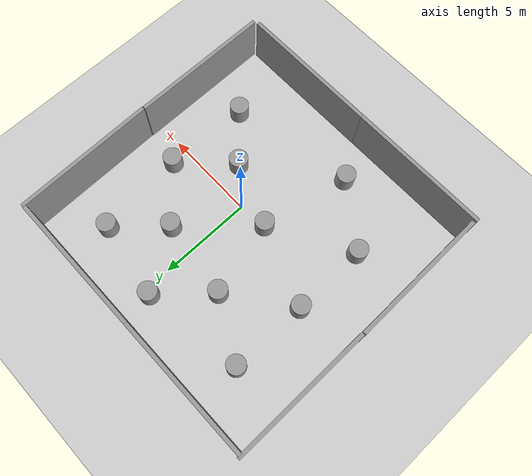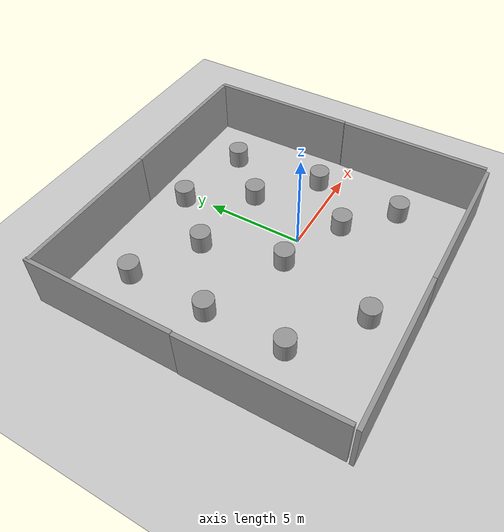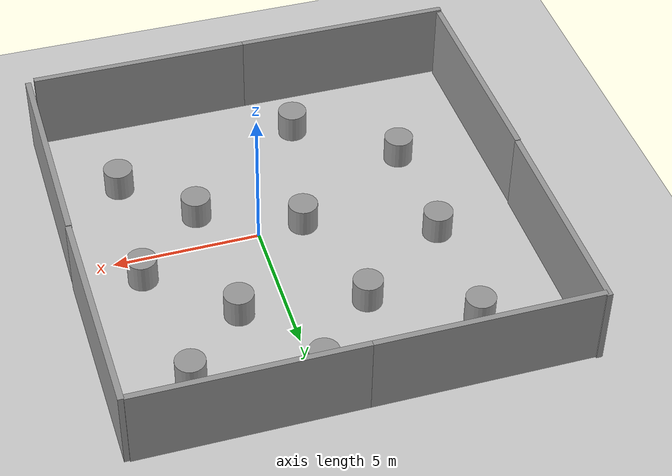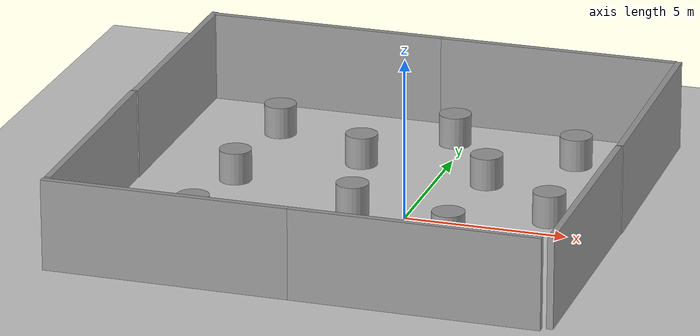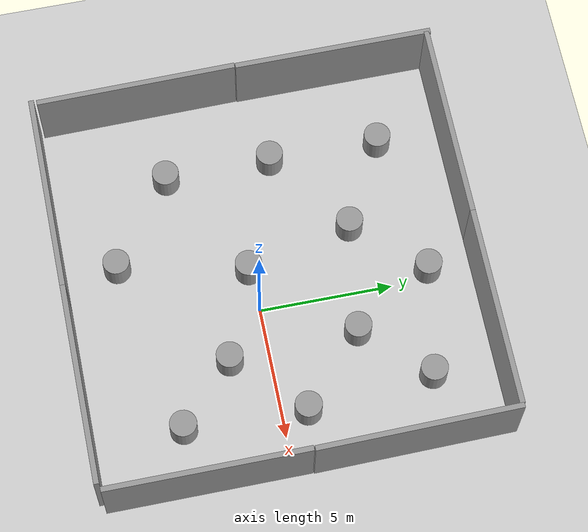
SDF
<sdf version="1.7">
 <world name="default">
  <light name="sun" type="directional">
   <pose>0 0 10 0 -0 0</pose>
   <diffuse>0.8 0.8 0.8 1</diffuse>
   <specular>0.2 0.2 0.2 1</specular>
   <attenuation>
    <range>1000</range>
    <constant>0.9</constant>
    <linear>0.01</linear>
    <quadratic>0.001</quadratic>
   </attenuation>
   <direction>-0.5 0.1 -0.9</direction>
   <spot><inner_angle>0</inner_angle><outer_angle>0</outer_angle><falloff>0</falloff></spot>
  </light>
  <model name="ground_plane">
   <static>1</static>
   <link name="link">
    <collision name="collision">
     <geometry><plane><normal>0 0 1</normal><size>100 100</size></plane></geometry>
     <surface>
      <contact><collide_bitmask>65535</collide_bitmask></contact>
      <friction><ode><mu>100</mu><mu2>50</mu2></ode></friction>
     </surface>
    </collision>
    <visual name="visual">
     <cast_shadows>0</cast_shadows>
     <geometry><plane><normal>0 0 1</normal><size>100 100</size></plane></geometry>
     <material>
      <script><uri>file://media/materials/scripts/gazebo.material</uri><name>Gazebo/Grey</name></script>
     </material>
    </visual>
   </link>
  </model>
  <gravity>0 0 -9.8</gravity>
  <magnetic_field>6e-06 2.3e-05 -4.2e-05</magnetic_field>
  <atmosphere type="adiabatic"/>
  <physics type="ode">
   <max_step_size>0.001</max_step_size>
   <real_time_factor>1</real_time_factor>
   <real_time_update_rate>1000</real_time_update_rate>
  </physics>
  <scene><ambient>0.4 0.4 0.4 1</ambient><background>0.7 0.7 0.7 1</background><shadows>1</shadows></scene>
  <spherical_coordinates>
   <surface_model>EARTH_WGS84</surface_model>
   <latitude_deg>0</latitude_deg>
   <longitude_deg>0</longitude_deg>
   <elevation>0</elevation>
   <heading_deg>0</heading_deg>
  </spherical_coordinates>
  <model name="model"><static>0</static><pose>2.46027 -3.37516 0 0 -0 0</pose></model>
  <model name="model_0"><static>0</static><pose>1.96898 7.06514 0 0 -0 0</pose></model>
  <model name="grey_wall">
   <static>1</static>
   <link name="link">
    <pose>0 0 1.4 0 -0 0</pose>
    <collision name="collision"><geometry><box><size>7.5 0.2 2.8</size></box></geometry></collision>
    <visual name="visual">
     <cast_shadows>0</cast_shadows>
     <geometry><box><size>7.5 0.2 2.8</size></box></geometry>
     <material>
      <script>
       <uri>model://grey_wall/materials/scripts</uri>
       <uri>model://grey_wall/materials/textures</uri>
       <name>vrc/grey_wall</name>
      </script>
     </material>
    </visual>
   </link>
   <pose>2.44469 8.14211 0 0 -0 0</pose>
  </model>
  <model name="grey_wall_0">
   <static>1</static>
   <link name="link">
    <pose>0 0 1.4 0 -0 0</pose>
    <collision name="collision"><geometry><box><size>7.5 0.2 2.8</size></box></geometry></collision>
    <visual name="visual">
     <cast_shadows>0</cast_shadows>
     <geometry><box><size>7.5 0.2 2.8</size></box></geometry>
     <material>
      <script>
       <uri>model://grey_wall/materials/scripts</uri>
       <uri>model://grey_wall/materials/textures</uri>
       <name>vrc/grey_wall</name>
      </script>
     </material>
    </visual>
   </link>
   <pose>-5.05197 8.14496 0 0 -0 0</pose>
  </model>
  <model name="grey_wall_1">
   <static>1</static>
   <link name="link">
    <pose>0 0 1.4 0 -0 0</pose>
    <collision name="collision"><geometry><box><size>7.5 0.2 2.8</size></box></geometry></collision>
    <visual name="visual">
     <cast_shadows>0</cast_shadows>
     <geometry><box><size>7.5 0.2 2.8</size></box></geometry>
     <material>
      <script>
       <uri>model://grey_wall/materials/scripts</uri>
       <uri>model://grey_wall/materials/textures</uri>
       <name>vrc/grey_wall</name>
      </script>
     </material>
    </visual>
   </link>
   <pose>-8.80279 4.544 0 0 -0 1.57688</pose>
  </model>
  <model name="grey_wall_2">
   <static>1</static>
   <link name="link">
    <pose>0 0 1.4 0 -0 0</pose>
    <collision name="collision"><geometry><box><size>7.5 0.2 2.8</size></box></geometry></collision>
    <visual name="visual">
     <cast_shadows>0</cast_shadows>
     <geometry><box><size>7.5 0.2 2.8</size></box></geometry>
     <material>
      <script>
       <uri>model://grey_wall/materials/scripts</uri>
       <uri>model://grey_wall/materials/textures</uri>
       <name>vrc/grey_wall</name>
      </script>
     </material>
    </visual>
   </link>
   <pose>-8.74892 -2.98307 -0 0 -0 1.58628</pose>
  </model>
  <model name="grey_wall_3">
   <static>1</static>
   <link name="link">
    <pose>0 0 1.4 0 -0 0</pose>
    <collision name="collision"><geometry><box><size>7.5 0.2 2.8</size></box></geometry></collision>
    <visual name="visual">
     <cast_shadows>0</cast_shadows>
     <geometry><box><size>7.5 0.2 2.8</size></box></geometry>
     <material>
      <script>
       <uri>model://grey_wall/materials/scripts</uri>
       <uri>model://grey_wall/materials/textures</uri>
       <name>vrc/grey_wall</name>
      </script>
     </material>
    </visual>
   </link>
   <pose>6.33442 4.45428 0 0 0 -1.55425</pose>
  </model>
  <model name="grey_wall_4">
   <static>1</static>
   <link name="link">
    <pose>0 0 1.4 0 -0 0</pose>
    <collision name="collision"><geometry><box><size>7.5 0.2 2.8</size></box></geometry></collision>
    <visual name="visual">
     <cast_shadows>0</cast_shadows>
     <geometry><box><size>7.5 0.2 2.8</size></box></geometry>
     <material>
      <script>
       <uri>model://grey_wall/materials/scripts</uri>
       <uri>model://grey_wall/materials/textures</uri>
       <name>vrc/grey_wall</name>
      </script>
     </material>
    </visual>
   </link>
   <pose>6.38879 -3.07882 0 0 -0 1.57464</pose>
  </model>
  <model name="grey_wall_5">
   <static>1</static>
   <link name="link">
    <pose>0 0 1.4 0 -0 0</pose>
    <collision name="collision"><geometry><box><size>7.5 0.2 2.8</size></box></geometry></collision>
    <visual name="visual">
     <cast_shadows>0</cast_shadows>
     <geometry><box><size>7.5 0.2 2.8</size></box></geometry>
     <material>
      <script>
       <uri>model://grey_wall/materials/scripts</uri>
       <uri>model://grey_wall/materials/textures</uri>
       <name>vrc/grey_wall</name>
      </script>
     </material>
    </visual>
   </link>
   <pose>-5.06212 -6.93038 0 0 -0 0</pose>
  </model>
  <model name="grey_wall_6">
   <static>1</static>
   <link name="link">
    <pose>0 0 1.4 0 -0 0</pose>
    <collision name="collision"><geometry><box><size>7.5 0.2 2.8</size></box></geometry></collision>
    <visual name="visual">
     <cast_shadows>0</cast_shadows>
     <geometry><box><size>7.5 0.2 2.8</size></box></geometry>
     <material>
      <script>
       <uri>model://grey_wall/materials/scripts</uri>
       <uri>model://grey_wall/materials/textures</uri>
       <name>vrc/grey_wall</name>
      </script>
     </material>
    </visual>
   </link>
   <pose>2.43303 -6.93038 0 0 -0 0</pose>
  </model>
  <model name="unit_cylinder">
   <pose>-5.78617 5.66928 0.499998 3e-06 -3e-06 0</pose>
   <link name="link">
    <inertial>
     <mass>1</mass>
     <inertia><ixx>0.145833</ixx><ixy>0</ixy><ixz>0</ixz><iyy>0.145833</iyy><iyz>0</iyz><izz>0.125</izz></inertia>
    </inertial>
    <collision name="collision">
     <geometry><cylinder><radius>0.5</radius><length>1</length></cylinder></geometry>
    </collision>
    <visual name="visual">
     <geometry><cylinder><radius>0.5</radius><length>1</length></cylinder></geometry>
     <material>
      <script><name>Gazebo/Grey</name><uri>file://media/materials/scripts/gazebo.material</uri></script>
     </material>
    </visual>
   </link>
  </model>
  <model name="unit_cylinder_0">
   <pose>-5.83109 1.51574 0.499992 -3e-06 3e-06 0</pose>
   <link name="link">
    <inertial>
     <mass>1</mass>
     <inertia><ixx>0.145833</ixx><ixy>0</ixy><ixz>0</ixz><iyy>0.145833</iyy><iyz>0</iyz><izz>0.125</izz></inertia>
    </inertial>
    <collision name="collision">
     <geometry><cylinder><radius>0.5</radius><length>1</length></cylinder></geometry>
    </collision>
    <visual name="visual">
     <geometry><cylinder><radius>0.5</radius><length>1</length></cylinder></geometry>
     <material>
      <script><name>Gazebo/Grey</name><uri>file://media/materials/scripts/gazebo.material</uri></script>
     </material>
    </visual>
   </link>
  </model>
  <model name="unit_cylinder_1">
   <pose>-5.78107 -2.48792 0.499998 3e-06 -3e-06 0</pose>
   <link name="link">
    <inertial>
     <mass>1</mass>
     <inertia><ixx>0.145833</ixx><ixy>0</ixy><ixz>0</ixz><iyy>0.145833</iyy><iyz>0</iyz><izz>0.125</izz></inertia>
    </inertial>
    <collision name="collision">
     <geometry><cylinder><radius>0.5</radius><length>1</length></cylinder></geometry>
    </collision>
    <visual name="visual">
     <geometry><cylinder><radius>0.5</radius><length>1</length></cylinder></geometry>
     <material>
      <script><name>Gazebo/Grey</name><uri>file://media/materials/scripts/gazebo.material</uri></script>
     </material>
    </visual>
   </link>
  </model>
  <model name="unit_cylinder_2">
   <pose>-2.58313 3.91785 0.499992 -3e-06 3e-06 0</pose>
   <link name="link">
    <inertial>
     <mass>1</mass>
     <inertia><ixx>0.145833</ixx><ixy>0</ixy><ixz>0</ixz><iyy>0.145833</iyy><iyz>0</iyz><izz>0.125</izz></inertia>
    </inertial>
    <collision name="collision">
     <geometry><cylinder><radius>0.5</radius><length>1</length></cylinder></geometry>
    </collision>
    <visual name="visual">
     <geometry><cylinder><radius>0.5</radius><length>1</length></cylinder></geometry>
     <material>
      <script><name>Gazebo/Grey</name><uri>file://media/materials/scripts/gazebo.material</uri></script>
     </material>
    </visual>
   </link>
  </model>
  <model name="unit_cylinder_3">
   <pose>-2.58313 -4.90339 0.499998 3e-06 -3e-06 0</pose>
   <link name="link">
    <inertial>
     <mass>1</mass>
     <inertia><ixx>0.145833</ixx><ixy>0</ixy><ixz>0</ixz><iyy>0.145833</iyy><iyz>0</iyz><izz>0.125</izz></inertia>
    </inertial>
    <collision name="collision">
     <geometry><cylinder><radius>0.5</radius><length>1</length></cylinder></geometry>
    </collision>
    <visual name="visual">
     <geometry><cylinder><radius>0.5</radius><length>1</length></cylinder></geometry>
     <material>
      <script><name>Gazebo/Grey</name><uri>file://media/materials/scripts/gazebo.material</uri></script>
     </material>
    </visual>
   </link>
  </model>
  <model name="unit_cylinder_4">
   <pose>-1.58526 -0.113216 0.499992 -3e-06 -4e-06 -0</pose>
   <link name="link">
    <inertial>
     <mass>1</mass>
     <inertia><ixx>0.145833</ixx><ixy>0</ixy><ixz>0</ixz><iyy>0.145833</iyy><iyz>0</iyz><izz>0.125</izz></inertia>
    </inertial>
    <collision name="collision">
     <geometry><cylinder><radius>0.5</radius><length>1</length></cylinder></geometry>
    </collision>
    <visual name="visual">
     <geometry><cylinder><radius>0.5</radius><length>1</length></cylinder></geometry>
     <material>
      <script><name>Gazebo/Grey</name><uri>file://media/materials/scripts/gazebo.material</uri></script>
     </material>
    </visual>
   </link>
  </model>
  <model name="unit_cylinder_5">
   <pose>-0.347941 6.43248 0.499998 3e-06 -4e-06 0</pose>
   <link name="link">
    <inertial>
     <mass>1</mass>
     <inertia><ixx>0.145833</ixx><ixy>0</ixy><ixz>0</ixz><iyy>0.145833</iyy><iyz>0</iyz><izz>0.125</izz></inertia>
    </inertial>
    <collision name="collision">
     <geometry><cylinder><radius>0.5</radius><length>1</length></cylinder></geometry>
    </collision>
    <visual name="visual">
     <geometry><cylinder><radius>0.5</radius><length>1</length></cylinder></geometry>
     <material>
      <script><name>Gazebo/Grey</name><uri>file://media/materials/scripts/gazebo.material</uri></script>
     </material>
    </visual>
   </link>
  </model>
  <model name="unit_cylinder_6">
   <pose>4.04264 -3.58595 0.499992 -3e-06 -4e-06 -0</pose>
   <link name="link">
    <inertial>
     <mass>1</mass>
     <inertia><ixx>0.145833</ixx><ixy>0</ixy><ixz>0</ixz><iyy>0.145833</iyy><iyz>0</iyz><izz>0.125</izz></inertia>
    </inertial>
    <collision name="collision">
     <geometry><cylinder><radius>0.5</radius><length>1</length></cylinder></geometry>
    </collision>
    <visual name="visual">
     <geometry><cylinder><radius>0.5</radius><length>1</length></cylinder></geometry>
     <material>
      <script><name>Gazebo/Grey</name><uri>file://media/materials/scripts/gazebo.material</uri></script>
     </material>
    </visual>
   </link>
  </model>
  <model name="unit_cylinder_7">
   <pose>4.20231 0.964076 0.499998 3e-06 4e-06 -0</pose>
   <link name="link">
    <inertial>
     <mass>1</mass>
     <inertia><ixx>0.145833</ixx><ixy>0</ixy><ixz>0</ixz><iyy>0.145833</iyy><iyz>0</iyz><izz>0.125</izz></inertia>
    </inertial>
    <collision name="collision">
     <geometry><cylinder><radius>0.5</radius><length>1</length></cylinder></geometry>
    </collision>
    <visual name="visual">
     <geometry><cylinder><radius>0.5</radius><length>1</length></cylinder></geometry>
     <material>
      <script><name>Gazebo/Grey</name><uri>file://media/materials/scripts/gazebo.material</uri></script>
     </material>
    </visual>
   </link>
  </model>
  <model name="unit_cylinder_8">
   <pose>1.80744 -1.47074 0.499992 -3e-06 4e-06 0</pose>
   <link name="link">
    <inertial>
     <mass>1</mass>
     <inertia><ixx>0.145833</ixx><ixy>0</ixy><ixz>0</ixz><iyy>0.145833</iyy><iyz>0</iyz><izz>0.125</izz></inertia>
    </inertial>
    <collision name="collision">
     <geometry><cylinder><radius>0.5</radius><length>1</length></cylinder></geometry>
    </collision>
    <visual name="visual">
     <geometry><cylinder><radius>0.5</radius><length>1</length></cylinder></geometry>
     <material>
      <script><name>Gazebo/Grey</name><uri>file://media/materials/scripts/gazebo.material</uri></script>
     </material>
    </visual>
   </link>
  </model>
  <model name="unit_cylinder_9">
   <pose>3.72334 5.71416 0.499993 -3e-06 -4e-06 -0</pose>
   <link name="link">
    <inertial>
     <mass>1</mass>
     <inertia><ixx>0.145833</ixx><ixy>0</ixy><ixz>0</ixz><iyy>0.145833</iyy><iyz>0</iyz><izz>0.125</izz></inertia>
    </inertial>
    <collision name="collision">
     <geometry><cylinder><radius>0.5</radius><length>1</length></cylinder></geometry>
    </collision>
    <visual name="visual">
     <geometry><cylinder><radius>0.5</radius><length>1</length></cylinder></geometry>
     <material>
      <script><name>Gazebo/Grey</name><uri>file://media/materials/scripts/gazebo.material</uri></script>
     </material>
    </visual>
   </link>
  </model>
  <model name="unit_cylinder_10">
   <pose>1.56796 3.35916 0.499997 3e-06 4e-06 -0</pose>
   <link name="link">
    <inertial>
     <mass>1</mass>
     <inertia><ixx>0.145833</ixx><ixy>0</ixy><ixz>0</ixz><iyy>0.145833</iyy><iyz>0</iyz><izz>0.125</izz></inertia>
    </inertial>
    <collision name="collision">
     <geometry><cylinder><radius>0.5</radius><length>1</length></cylinder></geometry>
    </collision>
    <visual name="visual">
     <geometry><cylinder><radius>0.5</radius><length>1</length></cylinder></geometry>
     <material>
      <script><name>Gazebo/Grey</name><uri>file://media/materials/scripts/gazebo.material</uri></script>
     </material>
    </visual>
   </link>
  </model>
 </world>
</sdf>
